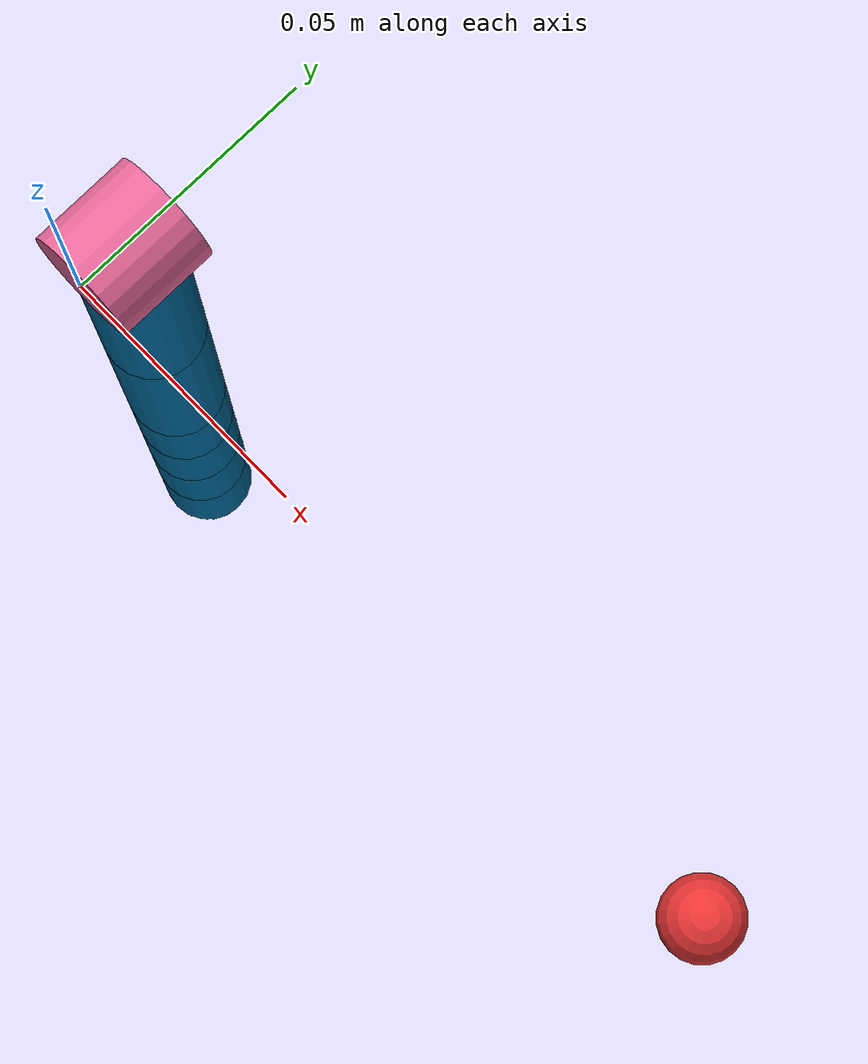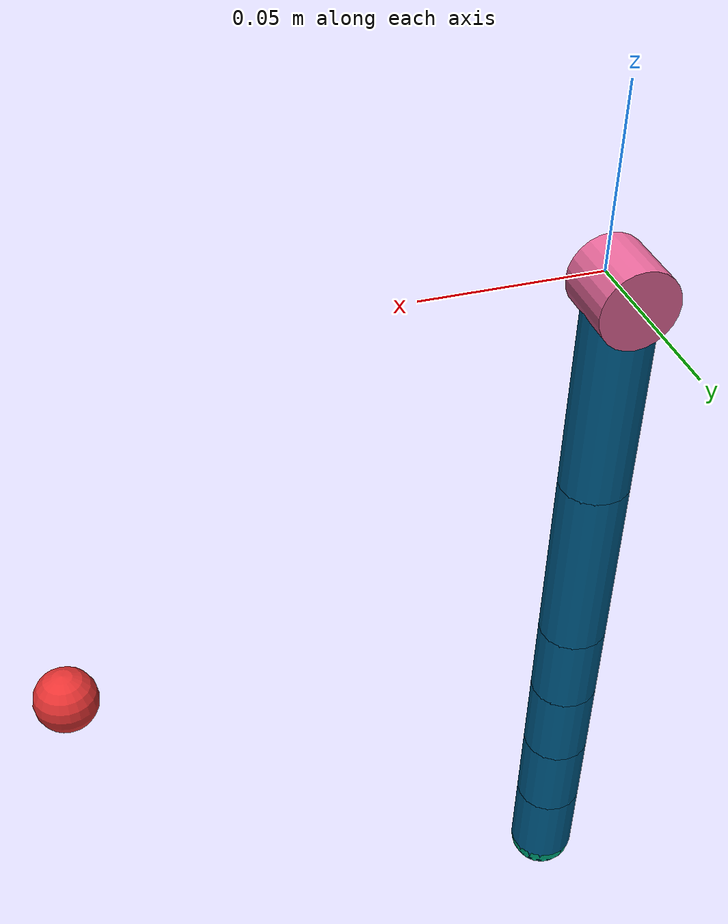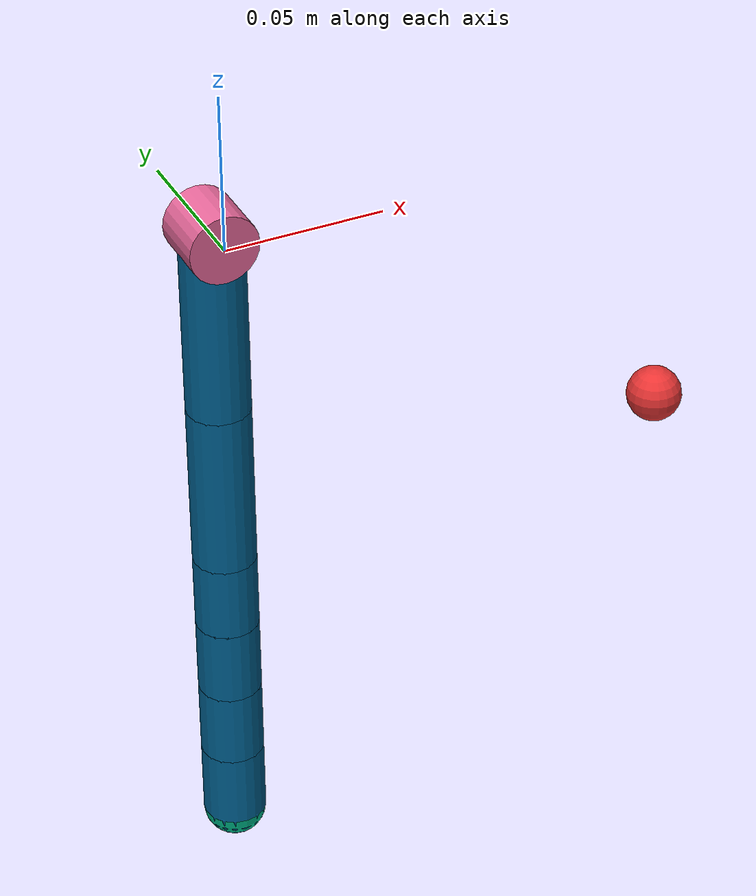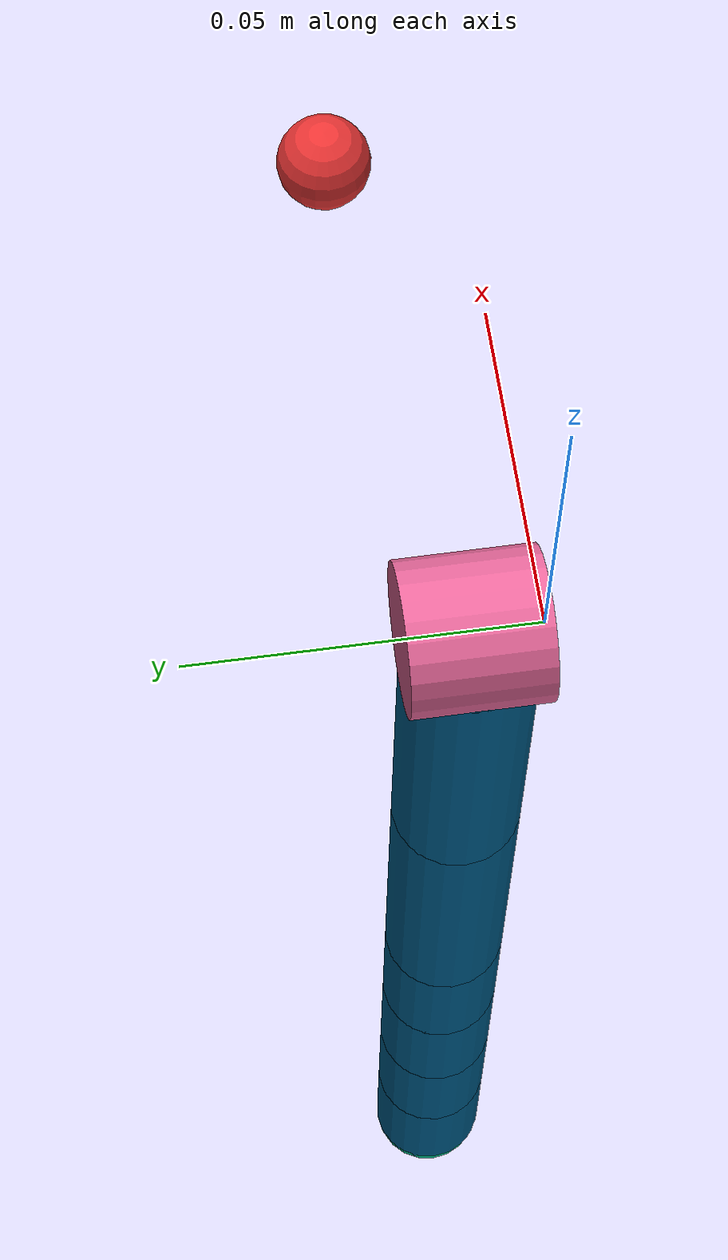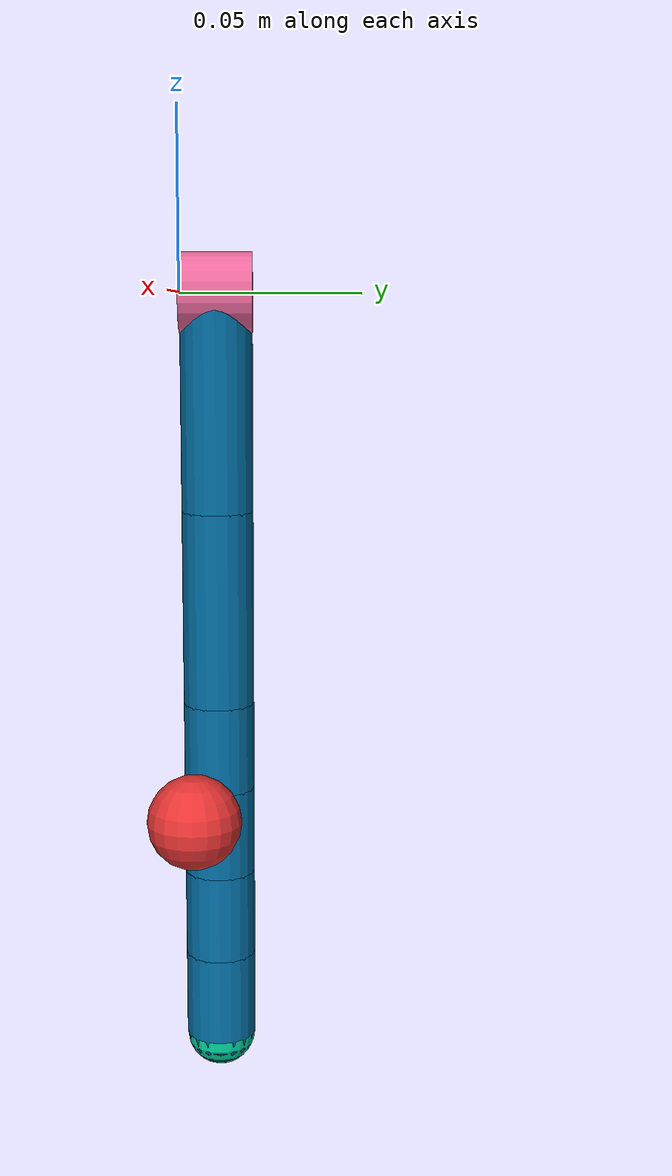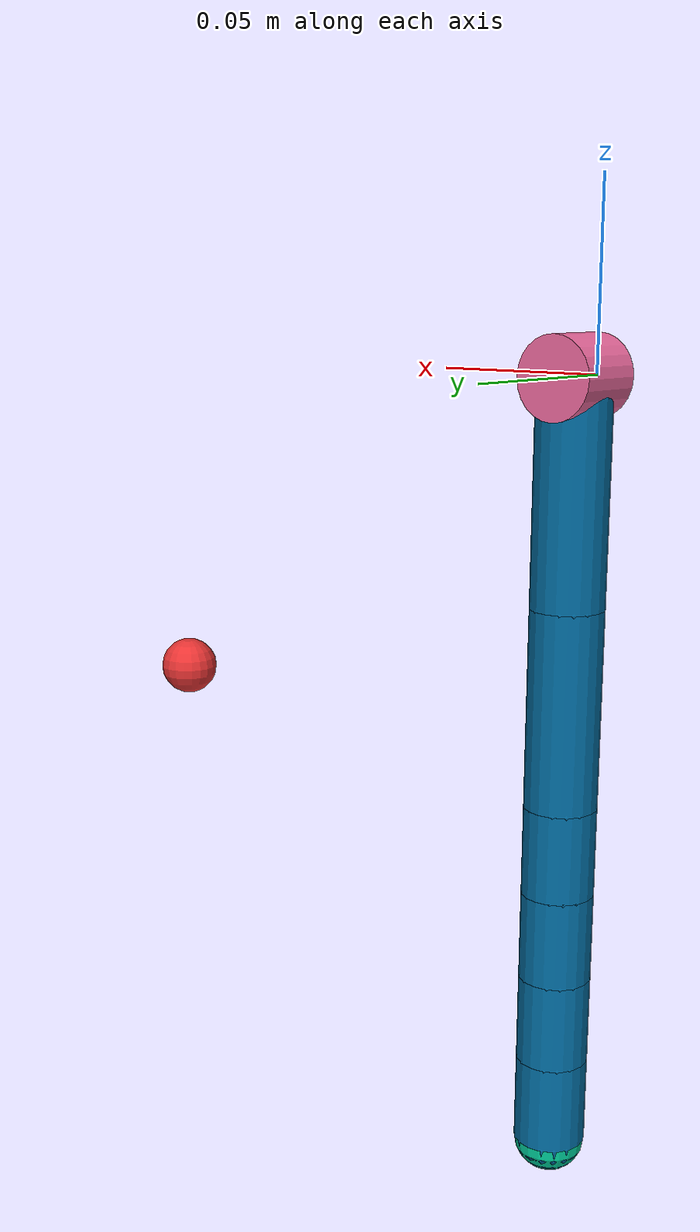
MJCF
<mujoco model="verticalArm">
	<compiler angle="radian" inertiafromgeom="auto"/>
	<default>
		<joint armature="1" damping="1" limited="true"/>
		<geom contype="0" friction="1 0.1 0.1" rgba="0.7 0.7 0 1"/>
	</default>
	<option gravity="0 0 -9.81" integrator="RK4" timestep="0.01"/>
	<worldbody>

		<!-- Arm -->
		<geom conaffinity="0" contype="0" fromto="0 0 0 0 0.02 0" name="root" rgba="0.9 0.4 0.6 1" size=".011" type="cylinder"/>
		<body name="shoulder" pos="0 0.01 -.005">
			<geom fromto="0 0 0 0 0 -0.055" name="shoulder" rgba="0.0 0.4 0.6 1" size=".01" type="capsule" mass="1"/>
			<joint axis="0 1 0" limited="true" range="-0.5 0" name="shoulder" pos="0 0 0" type="hinge" damping="1"  stiffness="0"/>
			<body name="shoulder2" pos="0 0 -.055">
				<geom fromto="0 0 0 0 0 -0.055" name="shoulder2" rgba="0.0 0.4 0.6 1" size=".01" type="capsule" mass="1"/>
				<joint axis="0 1 0" limited="true" range="-0.5 0" name="shoulder2" pos="0 0 0" type="hinge" damping="1"  stiffness="0"/>

				<body name="elbow" pos="0 0 -0.055">
					<joint axis="0 1 0" limited="true" name="elbow" pos="0 0 0" range="-1 0" type="hinge" damping="0."  stiffness="0"/>#-2.8
					<geom fromto="0 0 0 0 0 -0.025" name="elbow" rgba="0.0 0.4 0.6 1" size=".01" type="capsule" mass="0.25"/>#5.75
					<body name="elbow2" pos="0 0 -0.025">
						<joint axis="0 1 0" limited="true" name="elbow2" pos="0 0 0" range="-0.5 0" type="hinge" damping="0."  stiffness="0"/>#-2.8
						<geom fromto="0 0 0 0 0 -0.025" name="elbow2" rgba="0.0 0.4 0.6 1" size=".01" type="capsule" mass="0.25"/>#5.75
						<body name="elbow3" pos="0 0 -0.025">
							<joint axis="0 1 0" limited="true" name="elbow3" pos="0 0 0" range="-0.5 0" type="hinge" damping="0."  stiffness="0"/>#-2.8
							<geom fromto="0 0 0 0 0 -0.025" name="elbow3" rgba="0.0 0.4 0.6 1" size=".01" type="capsule" mass="0.25"/>#5.75
							<body name="elbow4" pos="0 0 -0.025">
								<joint axis="0 1 0" limited="true" name="elbow4" pos="0 0 0" range="-0.5 0" type="hinge" damping="0."  stiffness="0"/>#-2.8
								<geom fromto="0 0 0 0 0 -0.025" name="elbow4" rgba="0.0 0.4 0.6 1" size=".01" type="capsule" mass="0.25"/>#5.75
								<body name="fingertip" pos="0 0 -0.025">
									<geom contype="0" name="fingertip" pos="0 0 0" rgba="0.0 0.8 0.6 1" size=".01" type="sphere"  mass="0.33"/>#2
								</body>
							</body>
						</body>
					</body>
				</body>

			</body>
		</body>

		<!-- Target -->

		<body name="target" pos=".15 0.01 -.1">

			<site  name="target" pos="0 0 0" rgba="0.9 0.2 0.2 1" size=".009 .009 .009" type="sphere" />
		</body>

	</worldbody>
	<actuator>
		<motor ctrllimited="true" ctrlrange="-1.0 1.0" gear="30.0" joint="shoulder"/>#50.0 20
		<motor ctrllimited="true" ctrlrange="-1.0 1.0" gear="30.0" joint="shoulder2"/>#50.0 20
		<motor ctrllimited="true" ctrlrange="-1.0 1.0" gear="25.0" joint="elbow"/>#40.0 20
		<motor ctrllimited="true" ctrlrange="-1.0 1.0" gear="25.0" joint="elbow2"/>#40.0 20
		<motor ctrllimited="true" ctrlrange="-1.0 1.0" gear="25.0" joint="elbow3"/>#40.0 20
		<motor ctrllimited="true" ctrlrange="-1.0 1.0" gear="25.0" joint="elbow4"/>#40.0 20
	</actuator>

</mujoco>
